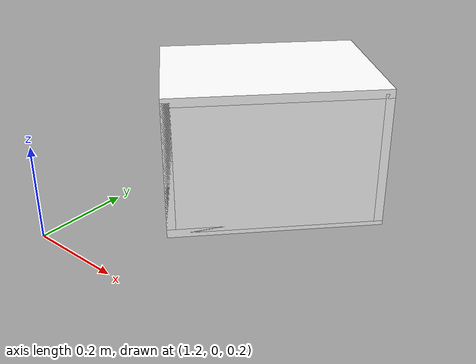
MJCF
<mujoco model="cabinet">
    <compiler angle="radian" eulerseq='zxy' />
    <option gravity = "0 0 0" />
    <option>
        <flag contact = "disable"/>
    </option>
    <statistic	extent="1.0" center="0.0 0.0 0.0"/>
    <visual>
        <map fogstart="3" fogend="5" force="0.1" znear=" 0.100000 " zfar=" 12.000000 "/>
    </visual>
    <size njmax="500" nconmax="100" />
    <actuator>
        <velocity joint="bottom_left_hinge" name="viva_revolution" kv='10'></velocity>
    </actuator>
    <asset>
        <texture builtin="flat" name="tabletex" height="32" width="32" rgb1="1 1 1" type="cube"></texture>
        <texture builtin="flat" name="objtex" height="32" width="32" rgb1="1 1 1" type="cube"></texture>
        <texture builtin="flat" name="handletex" height="32" width="32" rgb1="1 1 1" type="cube"></texture>
        <texture builtin="flat" name="wallpaper" height="32" width="32" rgb1="1 0 0" type="cube"></texture>
        <texture builtin="flat" name="kp" height="32" width="32" rgb1="1 1 1" type="cube"></texture>
        <material name="geomTable" shininess="0.03" specular="0.75" texture="tabletex"></material>
        <material name="geomObj" shininess="0.03" specular="0.75" texture="objtex"></material>
        <material name="geomHandle" shininess="0.03" specular="0.75" texture="handletex"></material>
        <material name="ax" shininess="0.03" specular="0.75" texture="wallpaper"></material>
        <material name="bg" shininess="0.03" specular="0.75" texture="wallpaper"></material>
        <material name="geomKeypad" shininess="0.03" specular="0.75" texture="kp"></material>
    </asset>
    <worldbody>
        <body name="cabinet_bottom" pos= " 1.502445 0.345965 0.267433 "  quat= " 0.379717 0.000000 0.000000 0.925103" >
            <inertial pos="0 0 0" mass="1" diaginertia="1 1 1" />
            <geom size= " 0.150463 0.206514 0.008557 "  type="box" material="geomObj" name="b"/>
            <body name="cabinet_left" pos= " 0.000000 -0.197957 0.130968 " >
                <inertial pos="0 0 0" mass="1" diaginertia="1 1 1" />
                <geom size= " 0.150463 0.008557 0.130968 "  type="box" material="geomObj" name="c" />
            </body>
            <body name="cabinet_right" pos= " 0.000000 0.197957 0.130968 " >
                <inertial pos="0 0 0" mass="1" diaginertia="1 1 1" />
                <geom size= " 0.150463 0.008557 0.130968 "  type="box" material="geomObj" name="d" />
            </body>
            <body name="cabinet_top" pos= " 0.000000 0.000000 0.261936 " >
                <inertial pos="0 0 0" mass="1" diaginertia="1 1 1" />
                <geom size= " 0.150463 0.206514 0.008557 "  type="box" material="geomObj" name="e"/>
            </body>
            <body name="cabinet_back" pos= " -0.141906 0.000000 0.130968 "  >
                <inertial pos="0 0 0" mass="1" diaginertia="1 1 1" />
                <geom size= " 0.008557 0.206514 0.130968 "  type="box" material="geomObj" name="f" />
            </body>
            <body name="cabinet_keypad" pos= " 0.008557 0.153885 0.130968 " >
                <inertial pos="0 0 0" mass="1" diaginertia="1 1 1" />
                <geom size= " 0.141906 0.051628 0.122411 "  type="box" material="geomKeypad" name="keypizzlemynizzle" />
            </body>
            <body name="cabinet_left_hinge" pos= " 0.150463 -0.206514 0.130968 " >
                <inertial pos= " 0.000000 0.154885 0.000000 "  mass="1" diaginertia="1 1 1" />
                <joint name="bottom_left_hinge" type="hinge" pos="0 0 0" axis="0 0 1" limited="true" range= "-2.3 0"  />
                <geom size= " 0.008557 0.154885 0.130968 "  pos= " 0.000000 0.154885 0.000000 "  type="box" material="geomObj" name="g"/>
                <body name="handle_link" pos= " 0.010000 0.279771 0.000000 " >
                    <inertial pos="0 0 0" mass="1" diaginertia="1 1 1" />
                    <geom size= " 0.010000 0.010000 0.130968 "  type="box" material="geomHandle" name="h"/>
                </body>
            </body>
        </body>
        <body name="external_camera_body_0" pos="0.0 0 0.00" >
            <camera euler="-1.57 1.57 0.0" fovy=" 54.280851 " name="external_camera_0" pos="0.0 0 0"></camera>
            <inertial pos= " 0.00 0.0 0.000000 " mass="1" diaginertia="1 1 1" />
            <joint name="cam_j" pos="0.0 0 0" axis = "1 0 0" type="free" />
        </body>
    </worldbody>
</mujoco>
